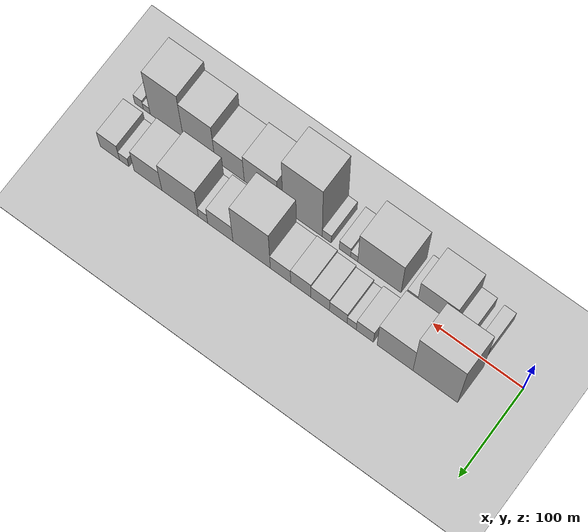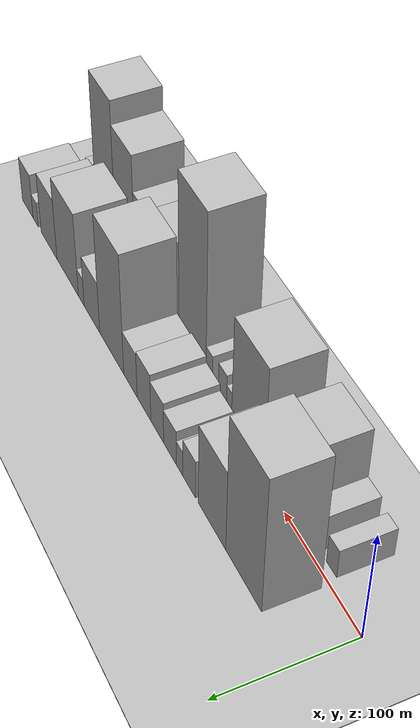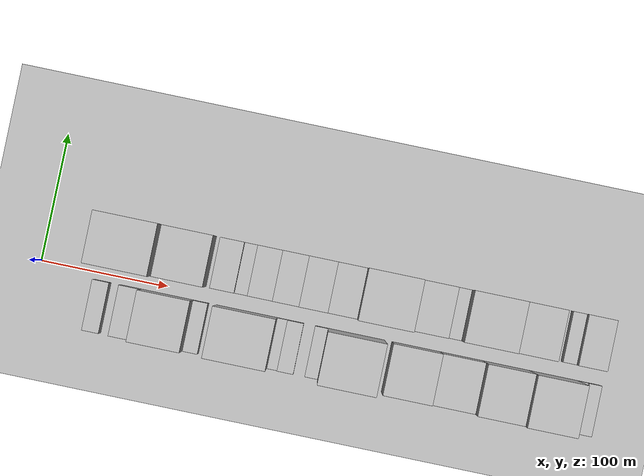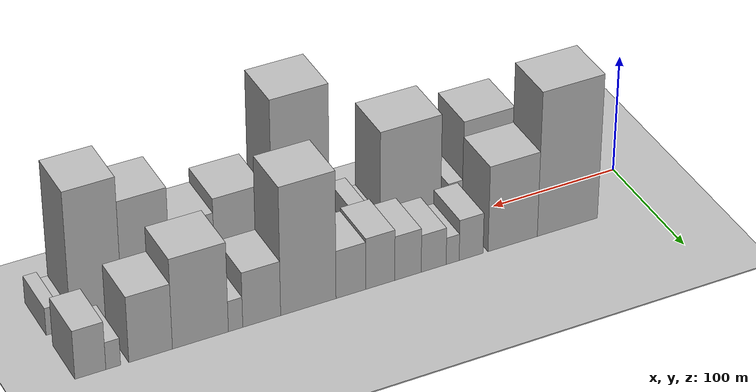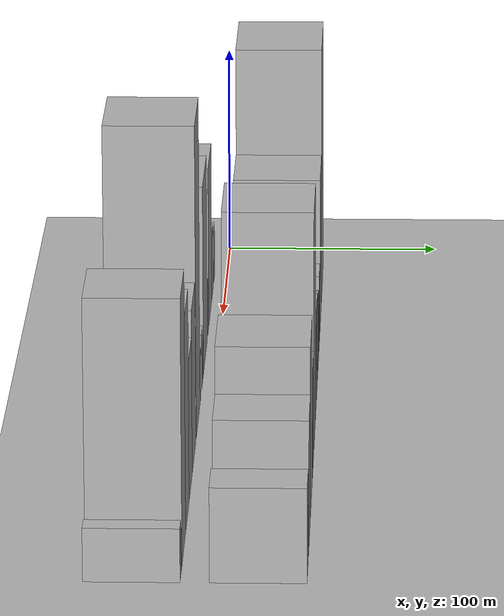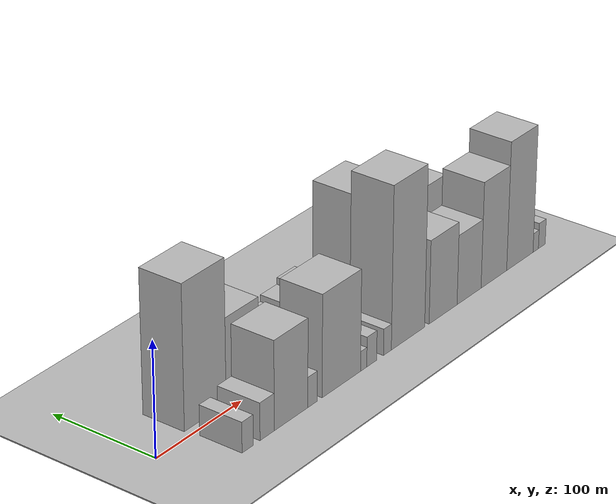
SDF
<?xml version="1.0" encoding="utf-8"?>

<sdf version="1.6">

   <world name="default">

      <gui fullscreen="0">

         <camera name="user_camera">

            <pose>-15 0 4.57585 0 0 0</pose>

            <view_controller>orbit</view_controller>

         </camera>

      </gui>

      <scene>

         <sky>

           <clouds>

             <speed>12</speed>

           </clouds>

         </sky>

         <ambient>0.4 0.4 0.4 1</ambient>

         <background>0.7 0.7 0.7 1</background>

         <shadows>1</shadows>

      </scene>

      <gravity>0 0 -9.8066</gravity>

      <magnetic_field>6e-06 2.3e-05 -4.2e-05</magnetic_field>

      <physics default="0" name="default_physics" type="ode">

         <ode>

            <solver>

               <type>quick</type>

               <iters>10</iters>

               <sor>1.0</sor>

               <use_dynamic_moi_rescaling>0</use_dynamic_moi_rescaling>

            </solver>

            <constraints>

               <cfm>0</cfm>

               <erp>0.2</erp>

               <contact_max_correcting_vel>100</contact_max_correcting_vel>

               <contact_surface_layer>0.001</contact_surface_layer>

            </constraints>

         </ode>

         <max_step_size>0.004</max_step_size>

         <real_time_factor>1</real_time_factor>

         <real_time_update_rate>250</real_time_update_rate>

      </physics>

      <light name="sun" type="directional">

         <cast_shadows>1</cast_shadows>

         <pose>0 0 10 0 0 0</pose>

         <diffuse>0.8 0.8 0.8 1</diffuse>

         <specular>0.2 0.2 0.2 1</specular>

         <attenuation>

            <range>1000</range>

            <constant>0.9</constant>

            <linear>0.01</linear>

            <quadratic>0.001</quadratic>

         </attenuation>

         <direction>-0.5 0.1 -0.9</direction>

      </light>

      <include>

         <name>ground_plane_1</name>

         <uri>model://HANNAS_ground_plane</uri>

         <pose>0 0 0  0 0 0</pose>

      </include>

      <include>

         <name>ground_plane_2</name>

         <uri>model://HANNAS_ground_plane</uri>

         <pose>100 0 0  0 0 0</pose>

      </include>

      <model name="building_1">

         <static>1</static>

         <pose frame="">64.6360 26.0000 0 0.000000 0.000000 1.570796</pose>

         <link name="link">

            <pose frame="">0 0 63.00 0 0 0</pose>

            <collision name="collision">

               <geometry>

                  <box>

                     <size>40.0000 49.2719 126.0000</size>

                  </box>

               </geometry>

               <max_contacts>10</max_contacts>

               <surface>

                  <contact>

                     <ode/>

                  </contact>

                  <bounce/>

                  <friction>

                     <torsional>

                        <ode/>

                     </torsional>

                     <ode/>

                  </friction>

               </surface>

            </collision>

            <visual name="visual">

               <cast_shadows>0</cast_shadows>

               <geometry>

                  <box>

                     <size>40.0000 49.2719 126.0000</size>

                  </box>

               </geometry>

               <material>

                  <script>

                     <uri>model://HANNAS_wall/materials/scripts</uri>

                     <uri>model://HANNAS_wall/materials/textures</uri>

                     <name>vrc/HANNAS_wall</name>

                  </script>

               </material>

            </visual>

            <self_collide>0</self_collide>

            <enable_wind>0</enable_wind>

            <kinematic>0</kinematic>

         </link>

      </model>

      <model name="building_2">

         <static>1</static>

         <pose frame="">109.1912 26.0000 0 0.000000 0.000000 1.570796</pose>

         <link name="link">

            <pose frame="">0 0 37.50 0 0 0</pose>

            <collision name="collision">

               <geometry>

                  <box>

                     <size>40.0000 39.8385 75.0000</size>

                  </box>

               </geometry>

               <max_contacts>10</max_contacts>

               <surface>

                  <contact>

                     <ode/>

                  </contact>

                  <bounce/>

                  <friction>

                     <torsional>

                        <ode/>

                     </torsional>

                     <ode/>

                  </friction>

               </surface>

            </collision>

            <visual name="visual">

               <cast_shadows>0</cast_shadows>

               <geometry>

                  <box>

                     <size>40.0000 39.8385 75.0000</size>

                  </box>

               </geometry>

               <material>

                  <script>

                     <uri>model://HANNAS_wall/materials/scripts</uri>

                     <uri>model://HANNAS_wall/materials/textures</uri>

                     <name>vrc/HANNAS_wall</name>

                  </script>

               </material>

            </visual>

            <self_collide>0</self_collide>

            <enable_wind>0</enable_wind>

            <kinematic>0</kinematic>

         </link>

      </model>

      <model name="building_3">

         <static>1</static>

         <pose frame="">142.6778 26.0000 0 0.000000 0.000000 1.570796</pose>

         <link name="link">

            <pose frame="">0 0 18.00 0 0 0</pose>

            <collision name="collision">

               <geometry>

                  <box>

                     <size>40.0000 19.1346 36.0000</size>

                  </box>

               </geometry>

               <max_contacts>10</max_contacts>

               <surface>

                  <contact>

                     <ode/>

                  </contact>

                  <bounce/>

                  <friction>

                     <torsional>

                        <ode/>

                     </torsional>

                     <ode/>

                  </friction>

               </surface>

            </collision>

            <visual name="visual">

               <cast_shadows>0</cast_shadows>

               <geometry>

                  <box>

                     <size>40.0000 19.1346 36.0000</size>

                  </box>

               </geometry>

               <material>

                  <script>

                     <uri>model://HANNAS_wall/materials/scripts</uri>

                     <uri>model://HANNAS_wall/materials/textures</uri>

                     <name>vrc/HANNAS_wall</name>

                  </script>

               </material>

            </visual>

            <self_collide>0</self_collide>

            <enable_wind>0</enable_wind>

            <kinematic>0</kinematic>

         </link>

      </model>

      <model name="building_4">

         <static>1</static>

         <pose frame="">157.4201 26.0000 0 0.000000 0.000000 1.570796</pose>

         <link name="link">

            <pose frame="">0 0 12.00 0 0 0</pose>

            <collision name="collision">

               <geometry>

                  <box>

                     <size>40.0000 10.3500 24.0000</size>

                  </box>

               </geometry>

               <max_contacts>10</max_contacts>

               <surface>

                  <contact>

                     <ode/>

                  </contact>

                  <bounce/>

                  <friction>

                     <torsional>

                        <ode/>

                     </torsional>

                     <ode/>

                  </friction>

               </surface>

            </collision>

            <visual name="visual">

               <cast_shadows>0</cast_shadows>

               <geometry>

                  <box>

                     <size>40.0000 10.3500 24.0000</size>

                  </box>

               </geometry>

               <material>

                  <script>

                     <uri>model://HANNAS_wall/materials/scripts</uri>

                     <uri>model://HANNAS_wall/materials/textures</uri>

                     <name>vrc/HANNAS_wall</name>

                  </script>

               </material>

            </visual>

            <self_collide>0</self_collide>

            <enable_wind>0</enable_wind>

            <kinematic>0</kinematic>

         </link>

      </model>

      <model name="building_5">

         <static>1</static>

         <pose frame="">172.4892 26.0000 0 0.000000 0.000000 1.570796</pose>

         <link name="link">

            <pose frame="">0 0 16.50 0 0 0</pose>

            <collision name="collision">

               <geometry>

                  <box>

                     <size>40.0000 19.7883 33.0000</size>

                  </box>

               </geometry>

               <max_contacts>10</max_contacts>

               <surface>

                  <contact>

                     <ode/>

                  </contact>

                  <bounce/>

                  <friction>

                     <torsional>

                        <ode/>

                     </torsional>

                     <ode/>

                  </friction>

               </surface>

            </collision>

            <visual name="visual">

               <cast_shadows>0</cast_shadows>

               <geometry>

                  <box>

                     <size>40.0000 19.7883 33.0000</size>

                  </box>

               </geometry>

               <material>

                  <script>

                     <uri>model://HANNAS_wall/materials/scripts</uri>

                     <uri>model://HANNAS_wall/materials/textures</uri>

                     <name>vrc/HANNAS_wall</name>

                  </script>

               </material>

            </visual>

            <self_collide>0</self_collide>

            <enable_wind>0</enable_wind>

            <kinematic>0</kinematic>

         </link>

      </model>

      <model name="building_6">

         <static>1</static>

         <pose frame="">192.8043 26.0000 0 0.000000 0.000000 1.570796</pose>

         <link name="link">

            <pose frame="">0 0 19.50 0 0 0</pose>

            <collision name="collision">

               <geometry>

                  <box>

                     <size>40.0000 20.8419 39.0000</size>

                  </box>

               </geometry>

               <max_contacts>10</max_contacts>

               <surface>

                  <contact>

                     <ode/>

                  </contact>

                  <bounce/>

                  <friction>

                     <torsional>

                        <ode/>

                     </torsional>

                     <ode/>

                  </friction>

               </surface>

            </collision>

            <visual name="visual">

               <cast_shadows>0</cast_shadows>

               <geometry>

                  <box>

                     <size>40.0000 20.8419 39.0000</size>

                  </box>

               </geometry>

               <material>

                  <script>

                     <uri>model://HANNAS_wall/materials/scripts</uri>

                     <uri>model://HANNAS_wall/materials/textures</uri>

                     <name>vrc/HANNAS_wall</name>

                  </script>

               </material>

            </visual>

            <self_collide>0</self_collide>

            <enable_wind>0</enable_wind>

            <kinematic>0</kinematic>

         </link>

      </model>

      <model name="building_7">

         <static>1</static>

         <pose frame="">214.5959 26.0000 0 0.000000 0.000000 1.570796</pose>

         <link name="link">

            <pose frame="">0 0 22.50 0 0 0</pose>

            <collision name="collision">

               <geometry>

                  <box>

                     <size>40.0000 22.7412 45.0000</size>

                  </box>

               </geometry>

               <max_contacts>10</max_contacts>

               <surface>

                  <contact>

                     <ode/>

                  </contact>

                  <bounce/>

                  <friction>

                     <torsional>

                        <ode/>

                     </torsional>

                     <ode/>

                  </friction>

               </surface>

            </collision>

            <visual name="visual">

               <cast_shadows>0</cast_shadows>

               <geometry>

                  <box>

                     <size>40.0000 22.7412 45.0000</size>

                  </box>

               </geometry>

               <material>

                  <script>

                     <uri>model://HANNAS_wall/materials/scripts</uri>

                     <uri>model://HANNAS_wall/materials/textures</uri>

                     <name>vrc/HANNAS_wall</name>

                  </script>

               </material>

            </visual>

            <self_collide>0</self_collide>

            <enable_wind>0</enable_wind>

            <kinematic>0</kinematic>

         </link>

      </model>

      <model name="building_8">

         <static>1</static>

         <pose frame="">237.4629 26.0000 0 0.000000 0.000000 1.570796</pose>

         <link name="link">

            <pose frame="">0 0 21.00 0 0 0</pose>

            <collision name="collision">

               <geometry>

                  <box>

                     <size>40.0000 22.9928 42.0000</size>

                  </box>

               </geometry>

               <max_contacts>10</max_contacts>

               <surface>

                  <contact>

                     <ode/>

                  </contact>

                  <bounce/>

                  <friction>

                     <torsional>

                        <ode/>

                     </torsional>

                     <ode/>

                  </friction>

               </surface>

            </collision>

            <visual name="visual">

               <cast_shadows>0</cast_shadows>

               <geometry>

                  <box>

                     <size>40.0000 22.9928 42.0000</size>

                  </box>

               </geometry>

               <material>

                  <script>

                     <uri>model://HANNAS_wall/materials/scripts</uri>

                     <uri>model://HANNAS_wall/materials/textures</uri>

                     <name>vrc/HANNAS_wall</name>

                  </script>

               </material>

            </visual>

            <self_collide>0</self_collide>

            <enable_wind>0</enable_wind>

            <kinematic>0</kinematic>

         </link>

      </model>

      <model name="building_9">

         <static>1</static>

         <pose frame="">270.2135 26.0000 0 0.000000 0.000000 1.570796</pose>

         <link name="link">

            <pose frame="">0 0 55.50 0 0 0</pose>

            <collision name="collision">

               <geometry>

                  <box>

                     <size>40.0000 42.5083 111.0000</size>

                  </box>

               </geometry>

               <max_contacts>10</max_contacts>

               <surface>

                  <contact>

                     <ode/>

                  </contact>

                  <bounce/>

                  <friction>

                     <torsional>

                        <ode/>

                     </torsional>

                     <ode/>

                  </friction>

               </surface>

            </collision>

            <visual name="visual">

               <cast_shadows>0</cast_shadows>

               <geometry>

                  <box>

                     <size>40.0000 42.5083 111.0000</size>

                  </box>

               </geometry>

               <material>

                  <script>

                     <uri>model://HANNAS_wall/materials/scripts</uri>

                     <uri>model://HANNAS_wall/materials/textures</uri>

                     <name>vrc/HANNAS_wall</name>

                  </script>

               </material>

            </visual>

            <self_collide>0</self_collide>

            <enable_wind>0</enable_wind>

            <kinematic>0</kinematic>

         </link>

      </model>

      <model name="building_10">

         <static>1</static>

         <pose frame="">305.8453 26.0000 0 0.000000 0.000000 1.570796</pose>

         <link name="link">

            <pose frame="">0 0 24.00 0 0 0</pose>

            <collision name="collision">

               <geometry>

                  <box>

                     <size>40.0000 28.7553 48.0000</size>

                  </box>

               </geometry>

               <max_contacts>10</max_contacts>

               <surface>

                  <contact>

                     <ode/>

                  </contact>

                  <bounce/>

                  <friction>

                     <torsional>

                        <ode/>

                     </torsional>

                     <ode/>

                  </friction>

               </surface>

            </collision>

            <visual name="visual">

               <cast_shadows>0</cast_shadows>

               <geometry>

                  <box>

                     <size>40.0000 28.7553 48.0000</size>

                  </box>

               </geometry>

               <material>

                  <script>

                     <uri>model://HANNAS_wall/materials/scripts</uri>

                     <uri>model://HANNAS_wall/materials/textures</uri>

                     <name>vrc/HANNAS_wall</name>

                  </script>

               </material>

            </visual>

            <self_collide>0</self_collide>

            <enable_wind>0</enable_wind>

            <kinematic>0</kinematic>

         </link>

      </model>

      <model name="building_11">

         <static>1</static>

         <pose frame="">325.6493 26.0000 0 0.000000 0.000000 1.570796</pose>

         <link name="link">

            <pose frame="">0 0 13.50 0 0 0</pose>

            <collision name="collision">

               <geometry>

                  <box>

                     <size>40.0000 10.8528 27.0000</size>

                  </box>

               </geometry>

               <max_contacts>10</max_contacts>

               <surface>

                  <contact>

                     <ode/>

                  </contact>

                  <bounce/>

                  <friction>

                     <torsional>

                        <ode/>

                     </torsional>

                     <ode/>

                  </friction>

               </surface>

            </collision>

            <visual name="visual">

               <cast_shadows>0</cast_shadows>

               <geometry>

                  <box>

                     <size>40.0000 10.8528 27.0000</size>

                  </box>

               </geometry>

               <material>

                  <script>

                     <uri>model://HANNAS_wall/materials/scripts</uri>

                     <uri>model://HANNAS_wall/materials/textures</uri>

                     <name>vrc/HANNAS_wall</name>

                  </script>

               </material>

            </visual>

            <self_collide>0</self_collide>

            <enable_wind>0</enable_wind>

            <kinematic>0</kinematic>

         </link>

      </model>

      <model name="building_12">

         <static>1</static>

         <pose frame="">352.0045 26.0000 0 0.000000 0.000000 1.570796</pose>

         <link name="link">

            <pose frame="">0 0 39.00 0 0 0</pose>

            <collision name="collision">

               <geometry>

                  <box>

                     <size>40.0000 41.8576 78.0000</size>

                  </box>

               </geometry>

               <max_contacts>10</max_contacts>

               <surface>

                  <contact>

                     <ode/>

                  </contact>

                  <bounce/>

                  <friction>

                     <torsional>

                        <ode/>

                     </torsional>

                     <ode/>

                  </friction>

               </surface>

            </collision>

            <visual name="visual">

               <cast_shadows>0</cast_shadows>

               <geometry>

                  <box>

                     <size>40.0000 41.8576 78.0000</size>

                  </box>

               </geometry>

               <material>

                  <script>

                     <uri>model://HANNAS_wall/materials/scripts</uri>

                     <uri>model://HANNAS_wall/materials/textures</uri>

                     <name>vrc/HANNAS_wall</name>

                  </script>

               </material>

            </visual>

            <self_collide>0</self_collide>

            <enable_wind>0</enable_wind>

            <kinematic>0</kinematic>

         </link>

      </model>

      <model name="building_13">

         <static>1</static>

         <pose frame="">389.0501 26.0000 0 0.000000 0.000000 1.570796</pose>

         <link name="link">

            <pose frame="">0 0 28.50 0 0 0</pose>

            <collision name="collision">

               <geometry>

                  <box>

                     <size>40.0000 32.2337 57.0000</size>

                  </box>

               </geometry>

               <max_contacts>10</max_contacts>

               <surface>

                  <contact>

                     <ode/>

                  </contact>

                  <bounce/>

                  <friction>

                     <torsional>

                        <ode/>

                     </torsional>

                     <ode/>

                  </friction>

               </surface>

            </collision>

            <visual name="visual">

               <cast_shadows>0</cast_shadows>

               <geometry>

                  <box>

                     <size>40.0000 32.2337 57.0000</size>

                  </box>

               </geometry>

               <material>

                  <script>

                     <uri>model://HANNAS_wall/materials/scripts</uri>

                     <uri>model://HANNAS_wall/materials/textures</uri>

                     <name>vrc/HANNAS_wall</name>

                  </script>

               </material>

            </visual>

            <self_collide>0</self_collide>

            <enable_wind>0</enable_wind>

            <kinematic>0</kinematic>

         </link>

      </model>

      <model name="building_14">

         <static>1</static>

         <pose frame="">416.5808 26.0000 0 0.000000 0.000000 1.570796</pose>

         <link name="link">

            <pose frame="">0 0 12.00 0 0 0</pose>

            <collision name="collision">

               <geometry>

                  <box>

                     <size>40.0000 10.8277 24.0000</size>

                  </box>

               </geometry>

               <max_contacts>10</max_contacts>

               <surface>

                  <contact>

                     <ode/>

                  </contact>

                  <bounce/>

                  <friction>

                     <torsional>

                        <ode/>

                     </torsional>

                     <ode/>

                  </friction>

               </surface>

            </collision>

            <visual name="visual">

               <cast_shadows>0</cast_shadows>

               <geometry>

                  <box>

                     <size>40.0000 10.8277 24.0000</size>

                  </box>

               </geometry>

               <material>

                  <script>

                     <uri>model://HANNAS_wall/materials/scripts</uri>

                     <uri>model://HANNAS_wall/materials/textures</uri>

                     <name>vrc/HANNAS_wall</name>

                  </script>

               </material>

            </visual>

            <self_collide>0</self_collide>

            <enable_wind>0</enable_wind>

            <kinematic>0</kinematic>

         </link>

      </model>

      <model name="building_15">

         <static>1</static>

         <pose frame="">433.2864 26.0000 0 0.000000 0.000000 1.570796</pose>

         <link name="link">

            <pose frame="">0 0 21.00 0 0 0</pose>

            <collision name="collision">

               <geometry>

                  <box>

                     <size>40.0000 22.5835 42.0000</size>

                  </box>

               </geometry>

               <max_contacts>10</max_contacts>

               <surface>

                  <contact>

                     <ode/>

                  </contact>

                  <bounce/>

                  <friction>

                     <torsional>

                        <ode/>

                     </torsional>

                     <ode/>

                  </friction>

               </surface>

            </collision>

            <visual name="visual">

               <cast_shadows>0</cast_shadows>

               <geometry>

                  <box>

                     <size>40.0000 22.5835 42.0000</size>

                  </box>

               </geometry>

               <material>

                  <script>

                     <uri>model://HANNAS_wall/materials/scripts</uri>

                     <uri>model://HANNAS_wall/materials/textures</uri>

                     <name>vrc/HANNAS_wall</name>

                  </script>

               </material>

            </visual>

            <self_collide>0</self_collide>

            <enable_wind>0</enable_wind>

            <kinematic>0</kinematic>

         </link>

      </model>

      <model name="building_16">

         <static>1</static>

         <pose frame="">49.6257 -26.0000 0 0.000000 0.000000 1.570796</pose>

         <link name="link">

            <pose frame="">0 0 13.50 0 0 0</pose>

            <collision name="collision">

               <geometry>

                  <box>

                     <size>40.0000 13.2514 27.0000</size>

                  </box>

               </geometry>

               <max_contacts>10</max_contacts>

               <surface>

                  <contact>

                     <ode/>

                  </contact>

                  <bounce/>

                  <friction>

                     <torsional>

                        <ode/>

                     </torsional>

                     <ode/>

                  </friction>

               </surface>

            </collision>

            <visual name="visual">

               <cast_shadows>0</cast_shadows>

               <geometry>

                  <box>

                     <size>40.0000 13.2514 27.0000</size>

                  </box>

               </geometry>

               <material>

                  <script>

                     <uri>model://HANNAS_wall/materials/scripts</uri>

                     <uri>model://HANNAS_wall/materials/textures</uri>

                     <name>vrc/HANNAS_wall</name>

                  </script>

               </material>

            </visual>

            <self_collide>0</self_collide>

            <enable_wind>0</enable_wind>

            <kinematic>0</kinematic>

         </link>

      </model>

      <model name="building_17">

         <static>1</static>

         <pose frame="">72.7817 -26.0000 0 0.000000 0.000000 1.570796</pose>

         <link name="link">

            <pose frame="">0 0 16.50 0 0 0</pose>

            <collision name="collision">

               <geometry>

                  <box>

                     <size>40.0000 17.0605 33.0000</size>

                  </box>

               </geometry>

               <max_contacts>10</max_contacts>

               <surface>

                  <contact>

                     <ode/>

                  </contact>

                  <bounce/>

                  <friction>

                     <torsional>

                        <ode/>

                     </torsional>

                     <ode/>

                  </friction>

               </surface>

            </collision>

            <visual name="visual">

               <cast_shadows>0</cast_shadows>

               <geometry>

                  <box>

                     <size>40.0000 17.0605 33.0000</size>

                  </box>

               </geometry>

               <material>

                  <script>

                     <uri>model://HANNAS_wall/materials/scripts</uri>

                     <uri>model://HANNAS_wall/materials/textures</uri>

                     <name>vrc/HANNAS_wall</name>

                  </script>

               </material>

            </visual>

            <self_collide>0</self_collide>

            <enable_wind>0</enable_wind>

            <kinematic>0</kinematic>

         </link>

      </model>

      <model name="building_18">

         <static>1</static>

         <pose frame="">101.8008 -26.0000 0 0.000000 0.000000 1.570796</pose>

         <link name="link">

            <pose frame="">0 0 39.00 0 0 0</pose>

            <collision name="collision">

               <geometry>

                  <box>

                     <size>40.0000 40.9778 78.0000</size>

                  </box>

               </geometry>

               <max_contacts>10</max_contacts>

               <surface>

                  <contact>

                     <ode/>

                  </contact>

                  <bounce/>

                  <friction>

                     <torsional>

                        <ode/>

                     </torsional>

                     <ode/>

                  </friction>

               </surface>

            </collision>

            <visual name="visual">

               <cast_shadows>0</cast_shadows>

               <geometry>

                  <box>

                     <size>40.0000 40.9778 78.0000</size>

                  </box>

               </geometry>

               <material>

                  <script>

                     <uri>model://HANNAS_wall/materials/scripts</uri>

                     <uri>model://HANNAS_wall/materials/textures</uri>

                     <name>vrc/HANNAS_wall</name>

                  </script>

               </material>

            </visual>

            <self_collide>0</self_collide>

            <enable_wind>0</enable_wind>

            <kinematic>0</kinematic>

         </link>

      </model>

      <model name="building_19">

         <static>1</static>

         <pose frame="">128.1597 -26.0000 0 0.000000 0.000000 1.570796</pose>

         <link name="link">

            <pose frame="">0 0 13.50 0 0 0</pose>

            <collision name="collision">

               <geometry>

                  <box>

                     <size>40.0000 11.7401 27.0000</size>

                  </box>

               </geometry>

               <max_contacts>10</max_contacts>

               <surface>

                  <contact>

                     <ode/>

                  </contact>

                  <bounce/>

                  <friction>

                     <torsional>

                        <ode/>

                     </torsional>

                     <ode/>

                  </friction>

               </surface>

            </collision>

            <visual name="visual">

               <cast_shadows>0</cast_shadows>

               <geometry>

                  <box>

                     <size>40.0000 11.7401 27.0000</size>

                  </box>

               </geometry>

               <material>

                  <script>

                     <uri>model://HANNAS_wall/materials/scripts</uri>

                     <uri>model://HANNAS_wall/materials/textures</uri>

                     <name>vrc/HANNAS_wall</name>

                  </script>

               </material>

            </visual>

            <self_collide>0</self_collide>

            <enable_wind>0</enable_wind>

            <kinematic>0</kinematic>

         </link>

      </model>

      <model name="building_20">

         <static>1</static>

         <pose frame="">164.3150 -26.0000 0 0.000000 0.000000 1.570796</pose>

         <link name="link">

            <pose frame="">0 0 45.00 0 0 0</pose>

            <collision name="collision">

               <geometry>

                  <box>

                     <size>40.0000 48.5703 90.0000</size>

                  </box>

               </geometry>

               <max_contacts>10</max_contacts>

               <surface>

                  <contact>

                     <ode/>

                  </contact>

                  <bounce/>

                  <friction>

                     <torsional>

                        <ode/>

                     </torsional>

                     <ode/>

                  </friction>

               </surface>

            </collision>

            <visual name="visual">

               <cast_shadows>0</cast_shadows>

               <geometry>

                  <box>

                     <size>40.0000 48.5703 90.0000</size>

                  </box>

               </geometry>

               <material>

                  <script>

                     <uri>model://HANNAS_wall/materials/scripts</uri>

                     <uri>model://HANNAS_wall/materials/textures</uri>

                     <name>vrc/HANNAS_wall</name>

                  </script>

               </material>

            </visual>

            <self_collide>0</self_collide>

            <enable_wind>0</enable_wind>

            <kinematic>0</kinematic>

         </link>

      </model>

      <model name="building_21">

         <static>1</static>

         <pose frame="">192.6321 -26.0000 0 0.000000 0.000000 1.570796</pose>

         <link name="link">

            <pose frame="">0 0 9.00 0 0 0</pose>

            <collision name="collision">

               <geometry>

                  <box>

                     <size>40.0000 8.0640 18.0000</size>

                  </box>

               </geometry>

               <max_contacts>10</max_contacts>

               <surface>

                  <contact>

                     <ode/>

                  </contact>

                  <bounce/>

                  <friction>

                     <torsional>

                        <ode/>

                     </torsional>

                     <ode/>

                  </friction>

               </surface>

            </collision>

            <visual name="visual">

               <cast_shadows>0</cast_shadows>

               <geometry>

                  <box>

                     <size>40.0000 8.0640 18.0000</size>

                  </box>

               </geometry>

               <material>

                  <script>

                     <uri>model://HANNAS_wall/materials/scripts</uri>

                     <uri>model://HANNAS_wall/materials/textures</uri>

                     <name>vrc/HANNAS_wall</name>

                  </script>

               </material>

            </visual>

            <self_collide>0</self_collide>

            <enable_wind>0</enable_wind>

            <kinematic>0</kinematic>

         </link>

      </model>

      <model name="building_22">

         <static>1</static>

         <pose frame="">203.0749 -26.0000 0 0.000000 0.000000 1.570796</pose>

         <link name="link">

            <pose frame="">0 0 13.50 0 0 0</pose>

            <collision name="collision">

               <geometry>

                  <box>

                     <size>40.0000 12.8215 27.0000</size>

                  </box>

               </geometry>

               <max_contacts>10</max_contacts>

               <surface>

                  <contact>

                     <ode/>

                  </contact>

                  <bounce/>

                  <friction>

                     <torsional>

                        <ode/>

                     </torsional>

                     <ode/>

                  </friction>

               </surface>

            </collision>

            <visual name="visual">

               <cast_shadows>0</cast_shadows>

               <geometry>

                  <box>

                     <size>40.0000 12.8215 27.0000</size>

                  </box>

               </geometry>

               <material>

                  <script>

                     <uri>model://HANNAS_wall/materials/scripts</uri>

                     <uri>model://HANNAS_wall/materials/textures</uri>

                     <name>vrc/HANNAS_wall</name>

                  </script>

               </material>

            </visual>

            <self_collide>0</self_collide>

            <enable_wind>0</enable_wind>

            <kinematic>0</kinematic>

         </link>

      </model>

      <model name="building_23">

         <static>1</static>

         <pose frame="">223.5918 -26.0000 0 0.000000 0.000000 1.570796</pose>

         <link name="link">

            <pose frame="">0 0 12.00 0 0 0</pose>

            <collision name="collision">

               <geometry>

                  <box>

                     <size>40.0000 10.2124 24.0000</size>

                  </box>

               </geometry>

               <max_contacts>10</max_contacts>

               <surface>

                  <contact>

                     <ode/>

                  </contact>

                  <bounce/>

                  <friction>

                     <torsional>

                        <ode/>

                     </torsional>

                     <ode/>

                  </friction>

               </surface>

            </collision>

            <visual name="visual">

               <cast_shadows>0</cast_shadows>

               <geometry>

                  <box>

                     <size>40.0000 10.2124 24.0000</size>

                  </box>

               </geometry>

               <material>

                  <script>

                     <uri>model://HANNAS_wall/materials/scripts</uri>

                     <uri>model://HANNAS_wall/materials/textures</uri>

                     <name>vrc/HANNAS_wall</name>

                  </script>

               </material>

            </visual>

            <self_collide>0</self_collide>

            <enable_wind>0</enable_wind>

            <kinematic>0</kinematic>

         </link>

      </model>

      <model name="building_24">

         <static>1</static>

         <pose frame="">250.9569 -26.0000 0 0.000000 0.000000 1.570796</pose>

         <link name="link">

            <pose frame="">0 0 72.00 0 0 0</pose>

            <collision name="collision">

               <geometry>

                  <box>

                     <size>40.0000 44.5178 144.0000</size>

                  </box>

               </geometry>

               <max_contacts>10</max_contacts>

               <surface>

                  <contact>

                     <ode/>

                  </contact>

                  <bounce/>

                  <friction>

                     <torsional>

                        <ode/>

                     </torsional>

                     <ode/>

                  </friction>

               </surface>

            </collision>

            <visual name="visual">

               <cast_shadows>0</cast_shadows>

               <geometry>

                  <box>

                     <size>40.0000 44.5178 144.0000</size>

                  </box>

               </geometry>

               <material>

                  <script>

                     <uri>model://HANNAS_wall/materials/scripts</uri>

                     <uri>model://HANNAS_wall/materials/textures</uri>

                     <name>vrc/HANNAS_wall</name>

                  </script>

               </material>

            </visual>

            <self_collide>0</self_collide>

            <enable_wind>0</enable_wind>

            <kinematic>0</kinematic>

         </link>

      </model>

      <model name="building_25">

         <static>1</static>

         <pose frame="">298.3969 -26.0000 0 0.000000 0.000000 1.570796</pose>

         <link name="link">

            <pose frame="">0 0 37.50 0 0 0</pose>

            <collision name="collision">

               <geometry>

                  <box>

                     <size>40.0000 38.3623 75.0000</size>

                  </box>

               </geometry>

               <max_contacts>10</max_contacts>

               <surface>

                  <contact>

                     <ode/>

                  </contact>

                  <bounce/>

                  <friction>

                     <torsional>

                        <ode/>

                     </torsional>

                     <ode/>

                  </friction>

               </surface>

            </collision>

            <visual name="visual">

               <cast_shadows>0</cast_shadows>

               <geometry>

                  <box>

                     <size>40.0000 38.3623 75.0000</size>

                  </box>

               </geometry>

               <material>

                  <script>

                     <uri>model://HANNAS_wall/materials/scripts</uri>

                     <uri>model://HANNAS_wall/materials/textures</uri>

                     <name>vrc/HANNAS_wall</name>

                  </script>

               </material>

            </visual>

            <self_collide>0</self_collide>

            <enable_wind>0</enable_wind>

            <kinematic>0</kinematic>

         </link>

      </model>

      <model name="building_26">

         <static>1</static>

         <pose frame="">334.4190 -26.0000 0 0.000000 0.000000 1.570796</pose>

         <link name="link">

            <pose frame="">0 0 31.50 0 0 0</pose>

            <collision name="collision">

               <geometry>

                  <box>

                     <size>40.0000 33.6818 63.0000</size>

                  </box>

               </geometry>

               <max_contacts>10</max_contacts>

               <surface>

                  <contact>

                     <ode/>

                  </contact>

                  <bounce/>

                  <friction>

                     <torsional>

                        <ode/>

                     </torsional>

                     <ode/>

                  </friction>

               </surface>

            </collision>

            <visual name="visual">

               <cast_shadows>0</cast_shadows>

               <geometry>

                  <box>

                     <size>40.0000 33.6818 63.0000</size>

                  </box>

               </geometry>

               <material>

                  <script>

                     <uri>model://HANNAS_wall/materials/scripts</uri>

                     <uri>model://HANNAS_wall/materials/textures</uri>

                     <name>vrc/HANNAS_wall</name>

                  </script>

               </material>

            </visual>

            <self_collide>0</self_collide>

            <enable_wind>0</enable_wind>

            <kinematic>0</kinematic>

         </link>

      </model>

      <model name="building_27">

         <static>1</static>

         <pose frame="">369.5811 -26.0000 0 0.000000 0.000000 1.570796</pose>

         <link name="link">

            <pose frame="">0 0 48.00 0 0 0</pose>

            <collision name="collision">

               <geometry>

                  <box>

                     <size>40.0000 36.6423 96.0000</size>

                  </box>

               </geometry>

               <max_contacts>10</max_contacts>

               <surface>

                  <contact>

                     <ode/>

                  </contact>

                  <bounce/>

                  <friction>

                     <torsional>

                        <ode/>

                     </torsional>

                     <ode/>

                  </friction>

               </surface>

            </collision>

            <visual name="visual">

               <cast_shadows>0</cast_shadows>

               <geometry>

                  <box>

                     <size>40.0000 36.6423 96.0000</size>

                  </box>

               </geometry>

               <material>

                  <script>

                     <uri>model://HANNAS_wall/materials/scripts</uri>

                     <uri>model://HANNAS_wall/materials/textures</uri>

                     <name>vrc/HANNAS_wall</name>

                  </script>

               </material>

            </visual>

            <self_collide>0</self_collide>

            <enable_wind>0</enable_wind>

            <kinematic>0</kinematic>

         </link>

      </model>

      <model name="building_28">

         <static>1</static>

         <pose frame="">407.1553 -26.0000 0 0.000000 0.000000 1.570796</pose>

         <link name="link">

            <pose frame="">0 0 58.50 0 0 0</pose>

            <collision name="collision">

               <geometry>

                  <box>

                     <size>40.0000 38.5062 117.0000</size>

                  </box>

               </geometry>

               <max_contacts>10</max_contacts>

               <surface>

                  <contact>

                     <ode/>

                  </contact>

                  <bounce/>

                  <friction>

                     <torsional>

                        <ode/>

                     </torsional>

                     <ode/>

                  </friction>

               </surface>

            </collision>

            <visual name="visual">

               <cast_shadows>0</cast_shadows>

               <geometry>

                  <box>

                     <size>40.0000 38.5062 117.0000</size>

                  </box>

               </geometry>

               <material>

                  <script>

                     <uri>model://HANNAS_wall/materials/scripts</uri>

                     <uri>model://HANNAS_wall/materials/textures</uri>

                     <name>vrc/HANNAS_wall</name>

                  </script>

               </material>

            </visual>

            <self_collide>0</self_collide>

            <enable_wind>0</enable_wind>

            <kinematic>0</kinematic>

         </link>

      </model>

      <model name="building_29">

         <static>1</static>

         <pose frame="">430.4188 -26.0000 0 0.000000 0.000000 1.570796</pose>

         <link name="link">

            <pose frame="">0 0 9.00 0 0 0</pose>

            <collision name="collision">

               <geometry>

                  <box>

                     <size>40.0000 8.0208 18.0000</size>

                  </box>

               </geometry>

               <max_contacts>10</max_contacts>

               <surface>

                  <contact>

                     <ode/>

                  </contact>

                  <bounce/>

                  <friction>

                     <torsional>

                        <ode/>

                     </torsional>

                     <ode/>

                  </friction>

               </surface>

            </collision>

            <visual name="visual">

               <cast_shadows>0</cast_shadows>

               <geometry>

                  <box>

                     <size>40.0000 8.0208 18.0000</size>

                  </box>

               </geometry>

               <material>

                  <script>

                     <uri>model://HANNAS_wall/materials/scripts</uri>

                     <uri>model://HANNAS_wall/materials/textures</uri>

                     <name>vrc/HANNAS_wall</name>

                  </script>

               </material>

            </visual>

            <self_collide>0</self_collide>

            <enable_wind>0</enable_wind>

            <kinematic>0</kinematic>

         </link>

      </model>

      <model name="building_30">

         <static>1</static>

         <pose frame="">439.4778 -26.0000 0 0.000000 0.000000 1.570796</pose>

         <link name="link">

            <pose frame="">0 0 12.00 0 0 0</pose>

            <collision name="collision">

               <geometry>

                  <box>

                     <size>40.0000 10.0971 24.0000</size>

                  </box>

               </geometry>

               <max_contacts>10</max_contacts>

               <surface>

                  <contact>

                     <ode/>

                  </contact>

                  <bounce/>

                  <friction>

                     <torsional>

                        <ode/>

                     </torsional>

                     <ode/>

                  </friction>

               </surface>

            </collision>

            <visual name="visual">

               <cast_shadows>0</cast_shadows>

               <geometry>

                  <box>

                     <size>40.0000 10.0971 24.0000</size>

                  </box>

               </geometry>

               <material>

                  <script>

                     <uri>model://HANNAS_wall/materials/scripts</uri>

                     <uri>model://HANNAS_wall/materials/textures</uri>

                     <name>vrc/HANNAS_wall</name>

                  </script>

               </material>

            </visual>

            <self_collide>0</self_collide>

            <enable_wind>0</enable_wind>

            <kinematic>0</kinematic>

         </link>

      </model>

   </world>

</sdf>

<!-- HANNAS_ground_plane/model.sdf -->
<sdf version="1.4">
<model name="HANNAS_ground_plane">
  <static>true</static>
    <link name="link">
      <collision name="collision">
        <geometry>
          <plane>
            <normal>0 0 1</normal>
            <size>1000 1000</size>
          </plane>
        </geometry>
        <surface>
          <friction>
            <ode>
              <mu>100</mu>
              <mu2>50</mu2>
            </ode>
          </friction>
        </surface>
      </collision>
      <visual name="visual">
        <cast_shadows>false</cast_shadows>
        <geometry>
          <plane>
            <normal>0 0 1</normal>
            <size>1000 1000</size>
          </plane>
        </geometry>
        <material>
          <script>
            <uri>model://HANNAS_ground_plane/materials/scripts/HANNAS_ground_plane.material</uri>
	    <uri>model://HANNAS_ground_plane/materials/textures</uri>
            <name>HANNASGroundPlane/Image</name>
          </script>
        </material>
      </visual>
    </link>
  </model>
</sdf>
